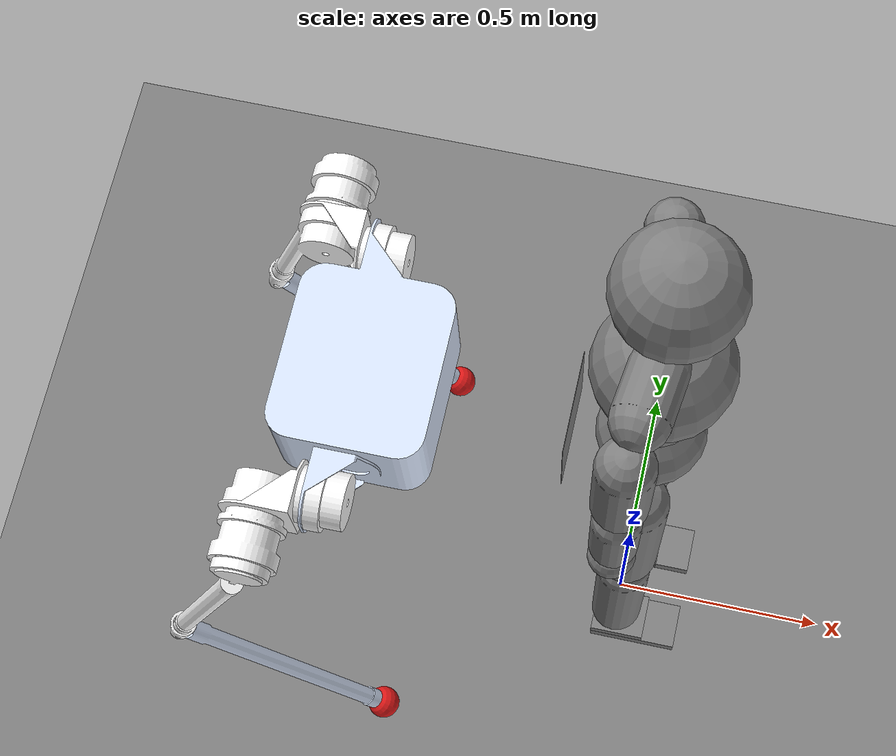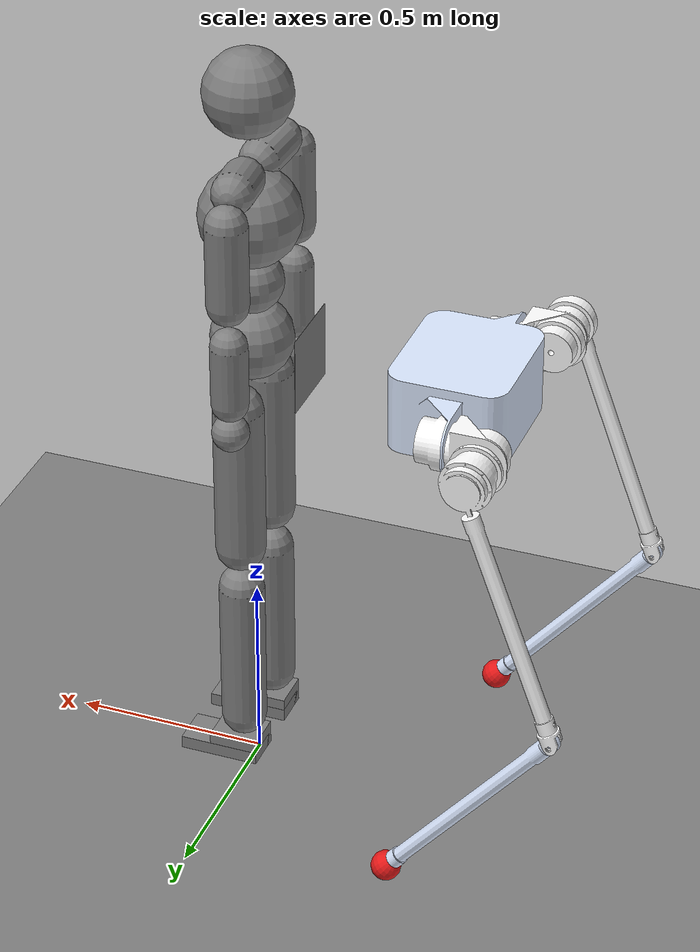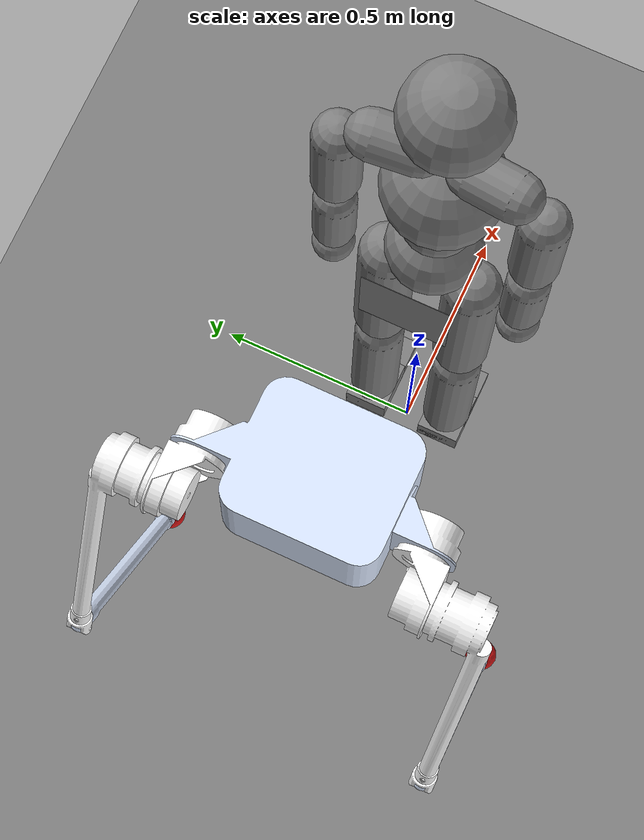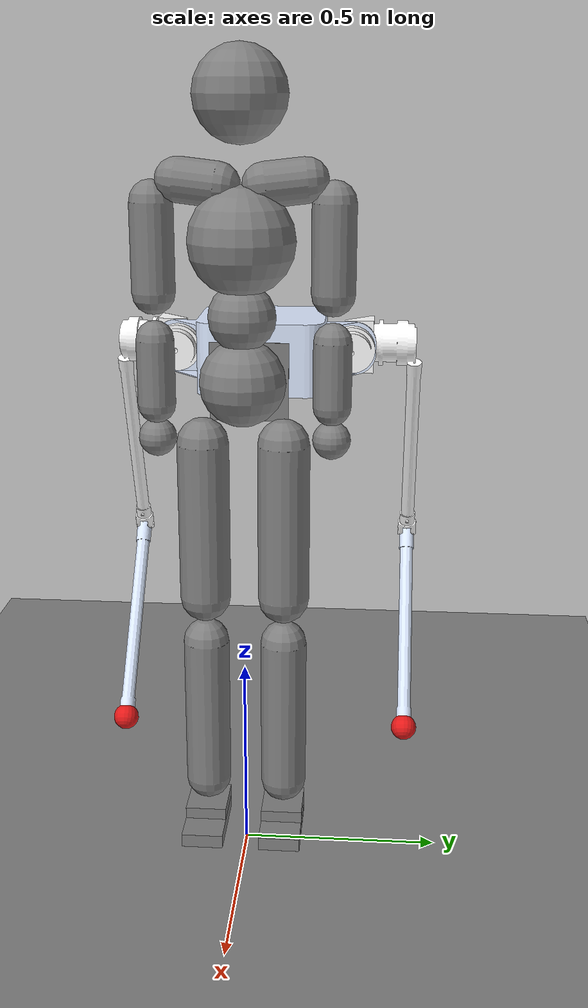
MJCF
<mujoco model="humanoid">

  <statistic extent="2" center="0.000000 0.000000 1.166667" />

  <option timestep="0.00555" />
  <compiler angle="degree" meshdir="meshes/" />
  <default>
    <motor ctrlrange="-1 1" ctrllimited="true" />
    <default class="body">
      <geom type="capsule" condim="1" friction="1.0 0.05 0.05" solimp=".9 .99 .003" solref=".015 1" />
      <joint type="hinge" damping="0.1" stiffness="5" armature=".007" limited="true" solimplimit="0 .99 .01" />
      <site size="0.046667" group="3" />
      <default class="force-torque">
        <site type="box" size="0.011667 0.011667 0.023333" rgba="1 0 0 1" />
      </default>
      <default class="visual">
        <geom type="mesh" contype="0" conaffinity="0" group="2" material="blue_mat"/>
      </default>
      <default class="touch">
        <site type="capsule" rgba="0 0 1 .3" />
      </default>
      <default class="collision">
        <geom contype="1" conaffinity="1" group="3" material="collision_mat"/>
      </default>
    </default>
  </default>

  <asset>
    <mesh name="base_link" file="base_link.STL"/>
    <mesh name="left_hip_x_link" file="left_hip_x_link.STL"/>
    <mesh name="left_hip_y_link" file="left_hip_y_link.STL"/>
    <mesh name="left_knee_link" file="left_knee_link.STL"/>
    <mesh name="right_hip_x_link" file="right_hip_x_link.STL"/>
    <mesh name="right_hip_y_link" file="right_hip_y_link.STL"/>
    <mesh name="right_knee_link" file="right_knee_link.STL"/>

    <material name="blue_mat" rgba="0.86 0.91 1 1"/>
    <material name="white_mat" rgba="1 1 1 1"/>
    <material name="collision_mat" rgba="0.8 0.5 0.3 0.5"/>
  </asset>

  <worldbody>
    <geom name="floor" type="plane" conaffinity="1" size="116.666667 116.666667 0.233333" />
    <body name="pelvis" pos="0.000000 0.000000 1.166667" childclass="body">
      <freejoint name="root" />
      <site name="root" class="force-torque" />
      <geom name="pelvis" type="sphere" pos="0.000000 0.000000 0.081667" size="0.105000" density="2226" />
      <geom name="upper_waist" type="sphere" pos="0.000000 0.000000 0.239167" size="0.081667" density="2226" />
      <site name="pelvis" class="touch" type="sphere" pos="0.000000 0.000000 0.081667" size="0.106167" />
      <site name="upper_waist" class="touch" type="sphere" pos="0.000000 0.000000 0.239167" size="0.082833" />

      <body name="torso" pos="0.000000 0.000000 0.275510">
        <light name="top" pos="0.000000 0.000000 2.333333" mode="trackcom" />
        <camera name="back" pos="-3.500000 0.000000 1.166667" xyaxes="0 -1 0 1 0 2" mode="trackcom" />
        <camera name="side" pos="0.000000 -3.500000 1.166667" xyaxes="1 0 0 0 1 2" mode="trackcom" />
        <joint name="abdomen_x" pos="0.000000 0.000000 0.000000" axis="1 0 0" range="-60 60" stiffness="600" damping="60" armature=".025" />
        <joint name="abdomen_y" pos="0.000000 0.000000 0.000000" axis="0 1 0" range="-60 90" stiffness="600" damping="60" armature=".025" />
        <joint name="abdomen_z" pos="0.000000 0.000000 0.000000" axis="0 0 1" range="-50 50" stiffness="600" damping="60" armature=".025" />
        <geom name="torso" type="sphere" pos="0.000000 0.000000 0.140000" size="0.128333" density="1794" />
        <site name="torso" class="touch" type="sphere" pos="0.000000 0.000000 0.140000" size="0.129500" />

        <geom name="right_clavicle" fromto="-0.007015 -0.053407 0.266928 -0.019641 -0.149540 0.277221" size="0.052500" density="1100" />
        <geom name="left_clavicle" fromto="-0.007015 0.053407 0.266928 -0.019641 0.149540 0.277221" size="0.052500" density="1100" />

        <body name="head" pos="0.000000 0.000000 0.261210">
          <joint name="neck_x" axis="1 0 0" range="-50 50" stiffness="50" damping="5" armature=".017" />
          <joint name="neck_y" axis="0 1 0" range="-40 60" stiffness="50" damping="5" armature=".017" />
          <joint name="neck_z" axis="0 0 1" range="-45 45" stiffness="50" damping="5" armature=".017" />
          <geom name="head" type="sphere" pos="0.000000 0.000000 0.204167" size="0.110833" density="1081" />
          <site name="head" class="touch" pos="0.000000 0.000000 0.204167" type="sphere" size="0.120167" />
          <camera name="egocentric" pos="0.120167 0.000000 0.204167" xyaxes="0 -1 0 .1 0 1" fovy="80" />
        </body>

        <body name="right_upper_arm" pos="-0.028058 -0.213628 0.284083">
          <joint name="right_shoulder_x" axis="1 0 0" range="-180 45" stiffness="200" damping="20" armature=".02" />
          <joint name="right_shoulder_y" axis="0 1 0" range="-180 60" stiffness="200" damping="20" armature=".02" />
          <joint name="right_shoulder_z" axis="0 0 1" range="-90 90" stiffness="200" damping="20" armature=".02" />
          <geom name="right_upper_arm" fromto="0.000000 0.000000 -0.058333 0.000000 0.000000 -0.268333" size="0.052500" density="982" />
          <site name="right_upper_arm" class="touch" pos="0.000000 0.000000 -0.163333" size="0.053667 0.116667" zaxis="0 0 1" />

          <body name="right_lower_arm" pos="0.000000 0.000000 -0.320586">
            <joint name="right_elbow" axis="0 1 0" range="-160 0" stiffness="150" damping="15" armature=".015" />
            <geom name="right_lower_arm" fromto="0.000000 0.000000 -0.061250 0.000000 0.000000 -0.218750" size="0.046667" density="1056" />
            <site name="right_lower_arm" class="touch" pos="0.000000 0.000000 -0.140000" size="0.047833 0.079917" zaxis="0 1 0" />

            <body name="right_hand" pos="0.000000 0.000000 -0.302105">
              <geom name="right_hand" type="sphere" size="0.046667" density="1865" />
              <site name="right_hand" class="touch" type="sphere" size="0.047833" />
            </body>
          </body>
        </body>

        <body name="left_upper_arm" pos="-0.028058 0.213628 0.284083">
          <joint name="left_shoulder_x" axis="1 0 0" range="-45 180" stiffness="200" damping="20" armature=".02" />
          <joint name="left_shoulder_y" axis="0 1 0" range="-180 60" stiffness="200" damping="20" armature=".02" />
          <joint name="left_shoulder_z" axis="0 0 1" range="-90 90" stiffness="200" damping="20" armature=".02" />
          <geom name="left_upper_arm" fromto="0.000000 0.000000 -0.058333 0.000000 0.000000 -0.268333" size="0.052500" density="982" />
          <site name="left_upper_arm" class="touch" pos="0.000000 0.000000 -0.163333" size="0.053667 0.116667" zaxis="0 0 1" />

          <body name="left_lower_arm" pos="0.000000 0.000000 -0.320586">
            <joint name="left_elbow" axis="0 1 0" range="-160 0" stiffness="150" damping="15" armature=".015" />
            <geom name="left_lower_arm" fromto="0.000000 0.000000 -0.061250 0.000000 0.000000 -0.218750" size="0.046667" density="1056" />
            <site name="left_lower_arm" class="touch" pos="0.000000 0.000000 -0.116667" size="0.047833 0.079917" zaxis="0 0 1" />

            <body name="left_hand" pos="0.000000 0.000000 -0.302105">
              <geom name="left_hand" type="sphere" size="0.046667" density="1865" />
              <site name="left_hand" class="touch" type="sphere" size="0.047833" />
            </body>
          </body>
        </body>
      </body>

      <body name="right_thigh" pos="0.000000 -0.099035 0.000000">
        <site name="right_hip" class="force-torque" />
        <joint name="right_hip_x" axis="1 0 0" range="-60 15" stiffness="300" damping="30" armature=".02" />
        <joint name="right_hip_y" axis="0 1 0" range="-140 60" stiffness="300" damping="30" armature=".02" />
        <joint name="right_hip_z" axis="0 0 1" range="-60 35" stiffness="300" damping="30" armature=".02" />
        <geom name="right_thigh" fromto="0.000000 0.000000 -0.070000 0.000000 0.000000 -0.470000" size="0.064167" density="1269" />
        <site name="right_thigh" class="touch" pos="0.000000 0.000000 -0.245000" size="0.065333 0.351167" zaxis="0 0 -1" />

        <body name="right_shin" pos="0.000000 0.000000 -0.541804">
          <site name="right_knee" class="force-torque" pos="0.000000 0.000000 0.000000" />
          <joint name="right_knee" pos="0.000000 0.000000 0.000000" axis="0 1 0" range="0 160" stiffness="300" damping="30" armature=".02" />
          <geom name="right_shin" fromto="0.000000 0.000000 -0.052500 0.000000 0.000000 -0.444167" size="0.058333" density="1014" />
          <site name="right_shin" class="touch" pos="0.000000 0.000000 -0.233333" size="0.059500 0.182000" zaxis="0 0 -1" />

          <body name="right_foot" pos="0.000000 0.000000 -0.508182">
            <site name="right_ankle" class="force-torque" />
            <joint name="right_ankle_x" pos="0.000000 0.000000 0.000000" axis="1 0 0" range="-30 30" stiffness="200" damping="20" armature=".01" />
            <joint name="right_ankle_y" pos="0.000000 0.000000 0.000000" axis="0 1 0" range="-55 55" stiffness="200" damping="20" armature=".01" />
            <joint name="right_ankle_z" pos="0.000000 0.000000 0.000000" axis="0 0 1" range="-40 40" stiffness="200" damping="20" armature=".01" />
            <geom name="right_foot" type="box" pos="0.012500 0.000000 -0.026250" size="0.063250 0.052500 0.032083" density="1141" />
            <geom name="right_toe" type="box" pos="0.052500 0.000000 -0.041250" size="0.103250 0.052500 0.0171" density="1141" />
            <site name="right_foot" class="touch" type="box" pos="0.052500 0.000000 -0.026250" size="0.104417 0.064167 0.033250" />
          </body>
        </body>
      </body>

      <body name="left_thigh" pos="0.000000 0.099035 0.000000">
        <site name="left_hip" class="force-torque" />
        <joint name="left_hip_x" axis="1 0 0" range="-15 60" stiffness="300" damping="30" armature=".02" />
        <joint name="left_hip_y" axis="0 1 0" range="-140 60" stiffness="300" damping="30" armature=".02" />
        <joint name="left_hip_z" axis="0 0 1" range="-35 60" stiffness="300" damping="30" armature=".02" />
        <geom name="left_thigh" fromto="0.000000 0.000000 -0.070000 0.000000 0.000000 -0.470000" size="0.064167" density="1269" />
        <site name="left_thigh" class="touch" pos="0.000000 0.000000 -0.245000" size="0.065333 0.351167" zaxis="0 0 -1" />

        <body name="left_shin" pos="0.000000 0.000000 -0.541804">
          <site name="left_knee" class="force-torque" pos="0.000000 0.000000 0.023333" />
          <joint name="left_knee" pos="0.000000 0.000000 0.000000" axis="0 1 0" range="0 160" stiffness="300" damping="30" armature=".02" />
          <geom name="left_shin" fromto="0.000000 0.000000 -0.052500 0.000000 0.000000 -0.444167" size="0.058333" density="1014" />
          <site name="left_shin" class="touch" pos="0.000000 0.000000 -0.233333" size="0.059500 0.182000" zaxis="0 0 -1" />

          <body name="left_foot" pos="0.000000 0.000000 -0.508182">
            <site name="left_ankle" class="force-torque" />
            <joint name="left_ankle_x" pos="0.000000 0.000000 0.000000" axis="1 0 0" range="-30 30" stiffness="200" damping="20" armature=".01" />
            <joint name="left_ankle_y" pos="0.000000 0.000000 0.000000" axis="0 1 0" range="-55 55" stiffness="200" damping="20" armature=".01" />
            <joint name="left_ankle_z" pos="0.000000 0.000000 0.000000" axis="0 0 1" range="-40 40" stiffness="200" damping="20" armature=".01" />
            <geom name="left_foot" type="box" pos="0.012500 0.000000 -0.026250" size="0.063250 0.052500 0.032083" density="1141" />
            <geom name="left_toe" type="box" pos="0.052500 0.000000 -0.041250" size="0.103250 0.052500 0.0171" density="1141" />
            <site name="left_foot" class="touch" type="box" pos="0.052500 0.000000 -0.026250" size="0.104417 0.064167 0.033250" />
          </body>
        </body>
      </body>

			<body name="SRL" pos="-0.15 0 0.05">
        <geom name="board" pos="0 0 0" size="0.0005 0.1 0.1 " type="box" density='100'/>
        <body name="SRL_root" pos="-0.40 0 -0.10" euler="0 0 0">
          <joint armature="0.00" axis="0 0 1" damping="0" name="SRL_freejoint_z" pos="0.60 0 0" range="-20 20" stiffness="0"/>
          <joint armature="0.00" axis="0 1 0" damping="0" name="SRL_freejoint_y" pos="0.60 0 0" range="-20 20" stiffness="0"/>

          <inertial pos="-0.00060591 -1.445E-17 0.1" mass="10.665" fullinertia="0.163 0.109 0.201 0 0 0"/>

          <geom mesh="base_link" class="visual"/>
          <geom type="box" size="0.15 0.05 0.08" pos="0 0 0.1" class="collision"/>

          <!-- ================= LEFT LEG CHAIN ================= -->
          <!-- Left Hip X (Roll) -->
          <!-- Euler converted: 3.1416 rad -> 180 deg -->
          <body name="left_hip_x_link" pos="-0.065 0.2475 0.1" euler="0 0 180">
            <inertial pos="-0.024642 -0.0076065 0" mass="2.832" fullinertia="0.006 0.007 0.007 0.001 0 0"/>

            <!-- Range converted: -0.2 rad -> -11.46 deg, 0.65 rad -> 37.24 deg -->
            <joint name="left_hip_x_jonit" axis="-1 0 0" range="-11.46 37.24" damping="30" stiffness="300" armature="0.1"/>

            <geom mesh="left_hip_x_link" material="white_mat" class="visual"/>
            <geom type="capsule" size="0.05" fromto="-0.05 0 0 0.05 0 0" class="collision"/>

            <!-- Left Hip Y (Pitch - Thigh) -->
            <!-- URDF: 0.0725 -0.075 0 -->
            <body name="left_hip_y_link" pos="0.0725 -0.075 0">
              <inertial pos="0.030377 -0.029787 -0.083461" mass="6.144" fullinertia="0.145 0.144 0.043 0.008 0.043 -0.022"/>

              <!-- Range converted: +/- 1.05 rad -> +/- 60.16 deg -->
              <joint name="left_hip_y_jonit" axis="0 1 0" range="-60.16 60.16" damping="25" stiffness="250" armature="0.1"/>

              <geom mesh="left_hip_y_link" material="white_mat" class="visual"/>
              <!-- 碰撞体：从HipY原点指向Knee连接点 (0.237, -0.104, -0.65) -->
              <geom type="capsule" size="0.06" fromto="0 0 0 0.237 -0.104 -0.65" class="collision"/>

              <!-- Left Knee (Pitch - Shank) -->
              <!-- URDF: 0.23761 -0.1045 -0.65284, RPY 0.698 0 1.57 -->
              <!-- 使用四元数消除旋转歧义: Roll=40deg, Yaw=90deg -->
              <body name="left_knee_link" pos="0.23761 -0.1045 -0.65284" quat="0.66446 0.24184 0.24184 0.66446">
                <inertial pos="-1.16e-7 8.95e-8 -0.312" mass="0.697" fullinertia="0.039 0.039 0.00024 0 0 0"/>

                <!-- Range converted: +/- 1.05 rad -> +/- 60.16 deg -->
                <joint name="left_knee_jonit" axis="1 0 0" range="-60.16 60.16" damping="40" stiffness="350" armature="0.1"/>

                <geom mesh="left_knee_link" class="visual"/>
                <!-- 碰撞体：小腿约长 0.6m -->
                <geom type="capsule" size="0.04" fromto="0 0 0 0 0 -0.6" class="collision"/>

                <!-- 脚底接触球 -->
                <body name="SRL_left_end" pos="0 0 -0.645">
                    <inertial pos="0 0 0" mass="0.06" diaginertia="0.0001 0.0001 0.0001"/>
                    <geom name="SRL_left_end_contact" type="sphere" size="0.038"
                          friction="0.9 0.01 0.005"
                          contype="1" conaffinity="1"
                          rgba="0.9 0.1 0.1 1"/>
                    <site name="SRL_left_end_touch" size="0.05" rgba="0 1 0 0.2"/>
                </body>

              </body>
            </body>
          </body>

          <!-- ================= RIGHT LEG CHAIN ================= -->
          <!-- Right Hip X -->
          <!-- URDF: -0.065 -0.2475 0.1, RPY 0 0 3.1416 -->
          <!-- Euler converted: 3.1416 rad -> 180 deg -->
          <body name="right_hip_x_link" pos="-0.065 -0.2475 0.1" euler="0 0 180">
            <inertial pos="-0.024642 0.0076065 0" mass="2.832" fullinertia="0.006 0.007 0.007 -0.001 0 0"/>

            <!-- Range converted: -0.2 rad -> -11.46 deg, 0.65 rad -> 37.24 deg -->
            <joint name="right_hip_x_jonit" axis="1 0 0" range="-11.46 37.24" damping="30" stiffness="300" armature="0.1"/>

            <geom mesh="right_hip_x_link" material="white_mat" class="visual"/>
            <geom type="capsule" size="0.05" fromto="-0.05 0 0 0.05 0 0" class="collision"/>

            <!-- Right Hip Y -->
            <!-- URDF: 0.0725 0.075 0 -->
            <body name="right_hip_y_link" pos="0.0725 0.075 0">
              <inertial pos="0.030377 0.029786 -0.083461" mass="6.144" fullinertia="0.145 0.144 0.043 -0.008 0.043 0.022"/>

              <!-- Range converted: +/- 1.05 rad -> +/- 60.16 deg -->
              <joint name="right_hip_y_jonit" axis="0 1 0" range="-60.16 60.16" damping="25" stiffness="250" armature="0.1"/>

              <geom mesh="right_hip_y_link" material="white_mat" class="visual"/>
              <!-- 碰撞体：指向右腿膝盖位置 (0.237, 0.104, -0.65) -->
              <geom type="capsule" size="0.06" fromto="0 0 0 0.237 0.104 -0.65" class="collision"/>

              <!-- Right Knee -->
              <!-- URDF: 0.23761 0.1045 -0.65284 -->
              <body name="right_knee_link" pos="0.23761 0.1045 -0.65284" quat="0.66446 0.24184 0.24184 0.66446">
                <inertial pos="-1.16e-7 8.92e-8 -0.312" mass="0.697" fullinertia="0.039 0.039 0.00024 0 0 0"/>

                <!-- Range converted: +/- 1.05 rad -> +/- 60.16 deg -->
                <joint name="right_knee_jonit" axis="1 0 0" range="-60.16 60.16" damping="40" stiffness="350" armature="0.1"/>

                <geom mesh="right_knee_link" class="visual"/>
                <geom type="capsule" size="0.04" fromto="0 0 0 0 0 -0.6" class="collision"/>

                <!-- 脚底接触球 -->
                <body name="SRL_right_end" pos="0 0 -0.645">
                    <inertial pos="0 0 0" mass="0.06" diaginertia="0.0001 0.0001 0.0001"/>
                    <geom name="SRL_right_end_contact" type="sphere" size="0.038"
                          friction="0.9 0.01 0.005"
                          contype="1" conaffinity="1"
                          rgba="0.9 0.1 0.1 1"/>
                    <site name="SRL_right_end_touch" size="0.05" rgba="0 1 0 0.2"/>
                </body>

              </body>
            </body>
          </body>

        </body>
			</body>

    </body>
  </worldbody>

  <actuator>
    <motor name="abdomen_x" gear="231.5779" joint="abdomen_x" />
    <motor name="abdomen_y" gear="231.5779" joint="abdomen_y" />
    <motor name="abdomen_z" gear="231.5779" joint="abdomen_z" />
    <motor name="neck_x" gear="37.0525" joint="neck_x" />
    <motor name="neck_y" gear="37.0525" joint="neck_y" />
    <motor name="neck_z" gear="37.0525" joint="neck_z" />
    <motor name="right_shoulder_x" gear="129.6836" joint="right_shoulder_x" />
    <motor name="right_shoulder_y" gear="129.6836" joint="right_shoulder_y" />
    <motor name="right_shoulder_z" gear="129.6836" joint="right_shoulder_z" />
    <motor name="right_elbow" gear="111.1574" joint="right_elbow" />
    <motor name="left_shoulder_x" gear="129.6836" joint="left_shoulder_x" />
    <motor name="left_shoulder_y" gear="129.6836" joint="left_shoulder_y" />
    <motor name="left_shoulder_z" gear="129.6836" joint="left_shoulder_z" />
    <motor name="left_elbow" gear="111.1574" joint="left_elbow" />
    <motor name="right_hip_x" gear="231.5779" joint="right_hip_x" />
    <motor name="right_hip_z" gear="231.5779" joint="right_hip_z" />
    <motor name="right_hip_y" gear="231.5779" joint="right_hip_y" />
    <motor name="right_knee" gear="185.2623" joint="right_knee" />
    <motor name="right_ankle_x" gear="92.6312" joint="right_ankle_x" />
    <motor name="right_ankle_y" gear="92.6312" joint="right_ankle_y" />
    <motor name="right_ankle_z" gear="92.6312" joint="right_ankle_z" />
    <motor name="left_hip_x" gear="231.5779" joint="left_hip_x" />
    <motor name="left_hip_z" gear="231.5779" joint="left_hip_z" />
    <motor name="left_hip_y" gear="231.5779" joint="left_hip_y" />
    <motor name="left_knee" gear="185.2623" joint="left_knee" />
    <motor name="left_ankle_x" gear="92.6312" joint="left_ankle_x" />
    <motor name="left_ankle_y" gear="92.6312" joint="left_ankle_y" />
    <motor name="left_ankle_z" gear="92.6312" joint="left_ankle_z" />
  </actuator>

  <sensor>
    <subtreelinvel name="pelvis_subtreelinvel" body="pelvis" />
    <accelerometer name="root_accel" site="root" />
    <velocimeter name="root_vel" site="root" />
    <gyro name="root_gyro" site="root" />

    <force name="left_ankle_force" site="left_ankle" />
    <force name="right_ankle_force" site="right_ankle" />
    <force name="left_knee_force" site="left_knee" />
    <force name="right_knee_force" site="right_knee" />
    <force name="left_hip_force" site="left_hip" />
    <force name="right_hip_force" site="right_hip" />

    <torque name="left_ankle_torque" site="left_ankle" />
    <torque name="right_ankle_torque" site="right_ankle" />
    <torque name="left_knee_torque" site="left_knee" />
    <torque name="right_knee_torque" site="right_knee" />
    <torque name="left_hip_torque" site="left_hip" />
    <torque name="right_hip_torque" site="right_hip" />

    <touch name="pelvis_touch" site="pelvis" />
    <touch name="upper_waist_touch" site="upper_waist" />
    <touch name="torso_touch" site="torso" />
    <touch name="head_touch" site="head" />
    <touch name="right_upper_arm_touch" site="right_upper_arm" />
    <touch name="right_lower_arm_touch" site="right_lower_arm" />
    <touch name="right_hand_touch" site="right_hand" />
    <touch name="left_upper_arm_touch" site="left_upper_arm" />
    <touch name="left_lower_arm_touch" site="left_lower_arm" />
    <touch name="left_hand_touch" site="left_hand" />
    <touch name="right_thigh_touch" site="right_thigh" />
    <touch name="right_shin_touch" site="right_shin" />
    <touch name="right_foot_touch" site="right_foot" />
    <touch name="left_thigh_touch" site="left_thigh" />
    <touch name="left_shin_touch" site="left_shin" />
    <touch name="left_foot_touch" site="left_foot" />
  </sensor>

</mujoco>
